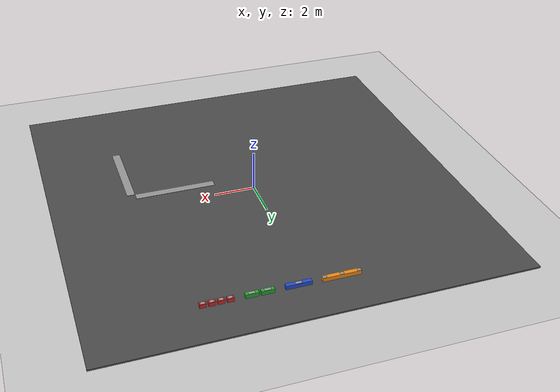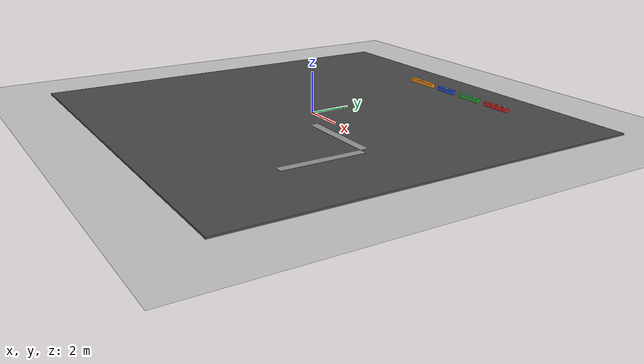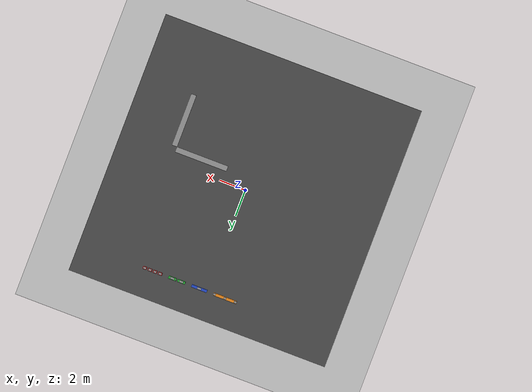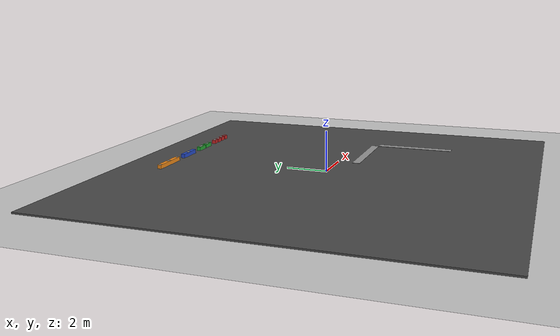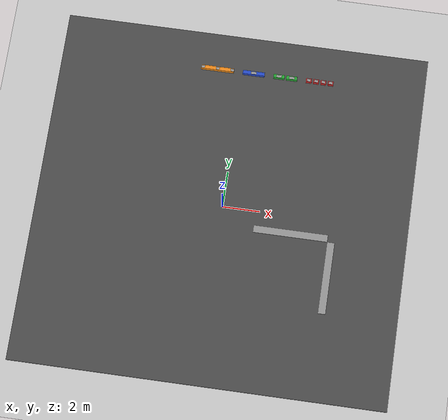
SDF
<sdf version="1.6">
 <world name="default">
  <model name="ground_plane">
   <static>1</static>
   <link name="link">
    <collision name="collision">
     <geometry><plane><normal>0 0 1</normal><size>100 100</size></plane></geometry>
     <surface>
      <contact><collide_bitmask>65535</collide_bitmask></contact>
      <friction><ode><mu>100</mu><mu2>50</mu2></ode></friction>
     </surface>
    </collision>
    <visual name="visual">
     <cast_shadows>0</cast_shadows>
     <geometry><plane><normal>0 0 1</normal><size>100 100</size></plane></geometry>
     <material>
      <script><uri>file://media/materials/scripts/gazebo.material</uri><name>Gazebo/Grey</name></script>
     </material>
    </visual>
   </link>
  </model>
  <model name="brick_red">
   <link name="base_link">
    <inertial>
     <mass>0.01</mass>
     <inertia><ixx>0.001</ixx><ixy>0</ixy><ixz>0</ixz><iyy>0.01</iyy><iyz>0</iyz><izz>0.01</izz></inertia>
    </inertial>
    <collision name="base_link_collision"><geometry><box><size>0.3 0.2 0.2</size></box></geometry></collision>
    <collision name="base_link_fixed_joint_lump__magnet_patch_collision_1">
     <pose>0 0 0.1 0 -0 0</pose>
     <geometry><box><size>0.1 0.025 0.0005</size></box></geometry>
    </collision>
    <visual name="base_link_visual">
     <geometry><box><size>0.3 0.2 0.2</size></box></geometry>
     <material>
      <script><name>Gazebo/Red</name><uri>file://media/materials/scripts/gazebo.material</uri></script>
     </material>
    </visual>
    <visual name="base_link_fixed_joint_lump__magnet_patch_visual_1">
     <pose>0 0 0.1 0 -0 0</pose>
     <geometry><box><size>0.2 0.15 0.001</size></box></geometry>
     <material>
      <script><name>Gazebo/Gray</name><uri>file://media/materials/scripts/gazebo.material</uri></script>
     </material>
    </visual>
   </link>
   <static>0</static>
   <plugin name="dipole_magnet" filename="libstorm_gazebo_dipole_magnet.so">
    <dipole_moment>0 0 1</dipole_moment>
    <shouldPublish>1</shouldPublish>
    <topicNs>magnet</topicNs>
    <updateRate>100</updateRate>
    <gain>1.0</gain>
    <bodyName>base_link</bodyName>
    <xyzOffset>0 0 -0.1</xyzOffset>
    <rpyOffset>0 -0 0</rpyOffset>
   </plugin>
   <pose>4.85011 7.89986 0.15 0 -0 0.004169</pose>
  </model>
  <model name="brick_red_0">
   <link name="base_link">
    <inertial>
     <mass>0.01</mass>
     <inertia><ixx>0.001</ixx><ixy>0</ixy><ixz>0</ixz><iyy>0.01</iyy><iyz>0</iyz><izz>0.01</izz></inertia>
    </inertial>
    <collision name="base_link_collision"><geometry><box><size>0.3 0.2 0.2</size></box></geometry></collision>
    <collision name="base_link_fixed_joint_lump__magnet_patch_collision_1">
     <pose>0 0 0.1 0 -0 0</pose>
     <geometry><box><size>0.1 0.025 0.0005</size></box></geometry>
    </collision>
    <visual name="base_link_visual">
     <geometry><box><size>0.3 0.2 0.2</size></box></geometry>
     <material>
      <script><name>Gazebo/Red</name><uri>file://media/materials/scripts/gazebo.material</uri></script>
     </material>
    </visual>
    <visual name="base_link_fixed_joint_lump__magnet_patch_visual_1">
     <pose>0 0 0.1 0 -0 0</pose>
     <geometry><box><size>0.2 0.15 0.001</size></box></geometry>
     <material>
      <script><name>Gazebo/Gray</name><uri>file://media/materials/scripts/gazebo.material</uri></script>
     </material>
    </visual>
   </link>
   <static>0</static>
   <plugin name="dipole_magnet" filename="libstorm_gazebo_dipole_magnet.so">
    <dipole_moment>0 0 1</dipole_moment>
    <shouldPublish>1</shouldPublish>
    <topicNs>magnet</topicNs>
    <updateRate>100</updateRate>
    <gain>1.0</gain>
    <bodyName>base_link</bodyName>
    <xyzOffset>0 0 -0.1</xyzOffset>
    <rpyOffset>0 -0 0</rpyOffset>
   </plugin>
   <pose>4.45001 7.89985 0.15 -0 -0 -0.00054</pose>
  </model>
  <model name="brick_red_1">
   <link name="base_link">
    <inertial>
     <mass>0.01</mass>
     <inertia><ixx>0.001</ixx><ixy>0</ixy><ixz>0</ixz><iyy>0.01</iyy><iyz>0</iyz><izz>0.01</izz></inertia>
    </inertial>
    <collision name="base_link_collision"><geometry><box><size>0.3 0.2 0.2</size></box></geometry></collision>
    <collision name="base_link_fixed_joint_lump__magnet_patch_collision_1">
     <pose>0 0 0.1 0 -0 0</pose>
     <geometry><box><size>0.1 0.025 0.0005</size></box></geometry>
    </collision>
    <visual name="base_link_visual">
     <geometry><box><size>0.3 0.2 0.2</size></box></geometry>
     <material>
      <script><name>Gazebo/Red</name><uri>file://media/materials/scripts/gazebo.material</uri></script>
     </material>
    </visual>
    <visual name="base_link_fixed_joint_lump__magnet_patch_visual_1">
     <pose>0 0 0.1 0 -0 0</pose>
     <geometry><box><size>0.2 0.15 0.001</size></box></geometry>
     <material>
      <script><name>Gazebo/Gray</name><uri>file://media/materials/scripts/gazebo.material</uri></script>
     </material>
    </visual>
   </link>
   <static>0</static>
   <plugin name="dipole_magnet" filename="libstorm_gazebo_dipole_magnet.so">
    <dipole_moment>0 0 1</dipole_moment>
    <shouldPublish>1</shouldPublish>
    <topicNs>magnet</topicNs>
    <updateRate>100</updateRate>
    <gain>1.0</gain>
    <bodyName>base_link</bodyName>
    <xyzOffset>0 0 -0.1</xyzOffset>
    <rpyOffset>0 -0 0</rpyOffset>
   </plugin>
   <pose>4.04999 7.89985 0.15 -0 -0 -0.00264</pose>
  </model>
  <model name="brick_red_2">
   <link name="base_link">
    <inertial>
     <mass>0.01</mass>
     <inertia><ixx>0.001</ixx><ixy>0</ixy><ixz>0</ixz><iyy>0.01</iyy><iyz>0</iyz><izz>0.01</izz></inertia>
    </inertial>
    <collision name="base_link_collision"><geometry><box><size>0.3 0.2 0.2</size></box></geometry></collision>
    <collision name="base_link_fixed_joint_lump__magnet_patch_collision_1">
     <pose>0 0 0.1 0 -0 0</pose>
     <geometry><box><size>0.1 0.025 0.0005</size></box></geometry>
    </collision>
    <visual name="base_link_visual">
     <geometry><box><size>0.3 0.2 0.2</size></box></geometry>
     <material>
      <script><name>Gazebo/Red</name><uri>file://media/materials/scripts/gazebo.material</uri></script>
     </material>
    </visual>
    <visual name="base_link_fixed_joint_lump__magnet_patch_visual_1">
     <pose>0 0 0.1 0 -0 0</pose>
     <geometry><box><size>0.2 0.15 0.001</size></box></geometry>
     <material>
      <script><name>Gazebo/Gray</name><uri>file://media/materials/scripts/gazebo.material</uri></script>
     </material>
    </visual>
   </link>
   <static>0</static>
   <plugin name="dipole_magnet" filename="libstorm_gazebo_dipole_magnet.so">
    <dipole_moment>0 0 1</dipole_moment>
    <shouldPublish>1</shouldPublish>
    <topicNs>magnet</topicNs>
    <updateRate>100</updateRate>
    <gain>1.0</gain>
    <bodyName>base_link</bodyName>
    <xyzOffset>0 0 -0.1</xyzOffset>
    <rpyOffset>0 -0 0</rpyOffset>
   </plugin>
   <pose>3.64989 7.89977 0.15 0 -0 0.004068</pose>
  </model>
  <model name="brick_green">
   <link name="base_link">
    <inertial>
     <mass>0.01</mass>
     <inertia><ixx>0.001</ixx><ixy>0</ixy><ixz>0</ixz><iyy>0.01</iyy><iyz>0</iyz><izz>0.01</izz></inertia>
    </inertial>
    <collision name="base_link_collision"><geometry><box><size>0.6 0.2 0.2</size></box></geometry></collision>
    <collision name="base_link_fixed_joint_lump__magnet_patch_collision_1">
     <pose>0 0 0.1 0 -0 0</pose>
     <geometry><box><size>0.1 0.025 0.0005</size></box></geometry>
    </collision>
    <visual name="base_link_visual">
     <geometry><box><size>0.6 0.2 0.2</size></box></geometry>
     <material>
      <script><name>Gazebo/Green</name><uri>file://media/materials/scripts/gazebo.material</uri></script>
     </material>
    </visual>
    <visual name="base_link_fixed_joint_lump__magnet_patch_visual_1">
     <pose>0 0 0.1 0 -0 0</pose>
     <geometry><box><size>0.3 0.15 0.001</size></box></geometry>
     <material>
      <script><name>Gazebo/Gray</name><uri>file://media/materials/scripts/gazebo.material</uri></script>
     </material>
    </visual>
   </link>
   <static>0</static>
   <plugin name="dipole_magnet" filename="libstorm_gazebo_dipole_magnet.so">
    <dipole_moment>0 0 1</dipole_moment>
    <shouldPublish>1</shouldPublish>
    <topicNs>magnet</topicNs>
    <updateRate>100</updateRate>
    <gain>1.0</gain>
    <bodyName>base_link</bodyName>
    <xyzOffset>0 0 -0.1</xyzOffset>
    <rpyOffset>0 -0 0</rpyOffset>
   </plugin>
   <pose>2.70011 7.89933 0.15 0 0 -0.000957</pose>
  </model>
  <model name="brick_green_0">
   <link name="base_link">
    <inertial>
     <mass>0.01</mass>
     <inertia><ixx>0.001</ixx><ixy>0</ixy><ixz>0</ixz><iyy>0.01</iyy><iyz>0</iyz><izz>0.01</izz></inertia>
    </inertial>
    <collision name="base_link_collision"><geometry><box><size>0.6 0.2 0.2</size></box></geometry></collision>
    <collision name="base_link_fixed_joint_lump__magnet_patch_collision_1">
     <pose>0 0 0.1 0 -0 0</pose>
     <geometry><box><size>0.1 0.025 0.0005</size></box></geometry>
    </collision>
    <visual name="base_link_visual">
     <geometry><box><size>0.6 0.2 0.2</size></box></geometry>
     <material>
      <script><name>Gazebo/Green</name><uri>file://media/materials/scripts/gazebo.material</uri></script>
     </material>
    </visual>
    <visual name="base_link_fixed_joint_lump__magnet_patch_visual_1">
     <pose>0 0 0.1 0 -0 0</pose>
     <geometry><box><size>0.3 0.15 0.001</size></box></geometry>
     <material>
      <script><name>Gazebo/Gray</name><uri>file://media/materials/scripts/gazebo.material</uri></script>
     </material>
    </visual>
   </link>
   <static>0</static>
   <plugin name="dipole_magnet" filename="libstorm_gazebo_dipole_magnet.so">
    <dipole_moment>0 0 1</dipole_moment>
    <shouldPublish>1</shouldPublish>
    <topicNs>magnet</topicNs>
    <updateRate>100</updateRate>
    <gain>1.0</gain>
    <bodyName>base_link</bodyName>
    <xyzOffset>0 0 -0.1</xyzOffset>
    <rpyOffset>0 -0 0</rpyOffset>
   </plugin>
   <pose>1.99996 7.89901 0.15 0 -0 0.001117</pose>
  </model>
  <model name="brick_blue_0">
   <link name="base_link">
    <inertial>
     <mass>0.01</mass>
     <inertia><ixx>0.001</ixx><ixy>0</ixy><ixz>0</ixz><iyy>0.01</iyy><iyz>0</iyz><izz>0.01</izz></inertia>
    </inertial>
    <collision name="base_link_collision"><geometry><box><size>1.2 0.2 0.2</size></box></geometry></collision>
    <collision name="base_link_fixed_joint_lump__magnet_patch_collision_1">
     <pose>0 0 0.1 0 -0 0</pose>
     <geometry><box><size>0.1 0.025 0.0005</size></box></geometry>
    </collision>
    <visual name="base_link_visual">
     <geometry><box><size>1.2 0.2 0.2</size></box></geometry>
     <material>
      <script><name>Gazebo/Blue</name><uri>file://media/materials/scripts/gazebo.material</uri></script>
     </material>
    </visual>
    <visual name="base_link_fixed_joint_lump__magnet_patch_visual_1">
     <pose>0 0 0.1 0 -0 0</pose>
     <geometry><box><size>0.3 0.15 0.001</size></box></geometry>
     <material>
      <script><name>Gazebo/Gray</name><uri>file://media/materials/scripts/gazebo.material</uri></script>
     </material>
    </visual>
   </link>
   <static>0</static>
   <plugin name="dipole_magnet" filename="libstorm_gazebo_dipole_magnet.so">
    <dipole_moment>0 0 1</dipole_moment>
    <shouldPublish>1</shouldPublish>
    <topicNs>magnet</topicNs>
    <updateRate>100</updateRate>
    <gain>1.0</gain>
    <bodyName>base_link</bodyName>
    <xyzOffset>0 0 -0.1</xyzOffset>
    <rpyOffset>0 -0 0</rpyOffset>
   </plugin>
   <pose>0.60001 7.89799 0.15 -0 -0 -2e-06</pose>
  </model>
  <model name="brick_orange_0">
   <link name="base_link">
    <inertial>
     <mass>0.01</mass>
     <inertia><ixx>0.001</ixx><ixy>0</ixy><ixz>0</ixz><iyy>0.01</iyy><iyz>0</iyz><izz>0.01</izz></inertia>
    </inertial>
    <collision name="base_link_collision"><geometry><box><size>1.8 0.2 0.2</size></box></geometry></collision>
    <collision name="base_link_fixed_joint_lump__magnet_patch_collision_0">
     <pose>-0.805 0 0.1 0 -0 0</pose>
     <geometry><box><size>0.2 0.15 0.0005</size></box></geometry>
    </collision>
    <collision name="base_link_fixed_joint_lump__magnet_patch_collision_1">
     <pose>0 0 0.1 0 -0 0</pose>
     <geometry><box><size>0.15 0.15 0.0005</size></box></geometry>
    </collision>
    <collision name="base_link_fixed_joint_lump__magnet_patch_collision_2">
     <pose>0.805 0 0.1 0 -0 0</pose>
     <geometry><box><size>0.15 0.15 0.0005</size></box></geometry>
    </collision>
    <visual name="base_link_visual">
     <geometry><box><size>1.8 0.2 0.2</size></box></geometry>
     <material>
      <script><name>Gazebo/Orange</name><uri>file://media/materials/scripts/gazebo.material</uri></script>
     </material>
    </visual>
    <visual name="base_link_fixed_joint_lump__magnet_patch_visual_0">
     <pose>-0.805 0 0.1 0 -0 0</pose>
     <geometry><box><size>0.19 0.15 0.001</size></box></geometry>
     <material>
      <script><name>Gazebo/Gray</name><uri>file://media/materials/scripts/gazebo.material</uri></script>
     </material>
    </visual>
    <visual name="base_link_fixed_joint_lump__magnet_patch_visual_1">
     <pose>0 0 0.1 0 -0 0</pose>
     <geometry><box><size>0.19 0.15 0.001</size></box></geometry>
     <material>
      <script><name>Gazebo/Gray</name><uri>file://media/materials/scripts/gazebo.material</uri></script>
     </material>
    </visual>
    <visual name="base_link_fixed_joint_lump__magnet_patch_visual_2">
     <pose>0.805 0 0.1 0 -0 0</pose>
     <geometry><box><size>0.19 0.15 0.001</size></box></geometry>
     <material>
      <script><name>Gazebo/Gray</name><uri>file://media/materials/scripts/gazebo.material</uri></script>
     </material>
    </visual>
   </link>
   <static>0</static>
   <plugin name="dipole_magnet" filename="libstorm_gazebo_dipole_magnet.so">
    <dipole_moment>0 0 1</dipole_moment>
    <shouldPublish>1</shouldPublish>
    <topicNs>magnet</topicNs>
    <updateRate>100</updateRate>
    <gain>1.0</gain>
    <bodyName>base_link</bodyName>
    <xyzOffset>0 0 -0.1</xyzOffset>
    <rpyOffset>0 -0 0</rpyOffset>
   </plugin>
   <plugin name="dipole_magnet" filename="libstorm_gazebo_dipole_magnet.so">
    <dipole_moment>0 0 1</dipole_moment>
    <shouldPublish>1</shouldPublish>
    <topicNs>magnet</topicNs>
    <updateRate>100</updateRate>
    <gain>1.0</gain>
    <bodyName>base_link</bodyName>
    <xyzOffset>-0.805 0 -0.1</xyzOffset>
    <rpyOffset>0 -0 0</rpyOffset>
   </plugin>
   <plugin name="dipole_magnet" filename="libstorm_gazebo_dipole_magnet.so">
    <dipole_moment>0 0 1</dipole_moment>
    <shouldPublish>1</shouldPublish>
    <topicNs>magnet</topicNs>
    <updateRate>100</updateRate>
    <gain>1.0</gain>
    <bodyName>base_link</bodyName>
    <xyzOffset>0.805 0 -0.1</xyzOffset>
    <rpyOffset>0 -0 0</rpyOffset>
   </plugin>
   <pose>-1.4 7.89846 0.15 0 -0 0</pose>
  </model>
  <model name="asphalt_plane">
   <static>1</static>
   <link name="link">
    <collision name="collision"><geometry><box><size>20 20 0.1</size></box></geometry></collision>
    <visual name="visual">
     <cast_shadows>0</cast_shadows>
     <geometry><box><size>20 20 0.1</size></box></geometry>
     <material>
      <script>
       <uri>model://asphalt_plane/materials/scripts</uri>
       <uri>model://asphalt_plane/materials/textures</uri>
       <name>vrc/asphalt</name>
      </script>
     </material>
    </visual>
   </link>
   <pose>0.00701 0.016741 0 0 -0 0</pose>
  </model>
  <model name="L-wall">
   <pose>4 -3 0.051046 0 -0 0</pose>
   <link name="Wall_2">
    <collision name="Wall_2_Collision">
     <geometry><box><size>4 0.4 0.01</size></box></geometry>
     <pose>0 0 0.005 0 -0 0</pose>
    </collision>
    <visual name="Wall_2_Visual">
     <pose>0 0 0.005 0 -0 0</pose>
     <geometry><box><size>4 0.4 0.01</size></box></geometry>
     <material>
      <script><uri>file://media/materials/scripts/gazebo.material</uri><name>Gazebo/Grey</name></script>
      <ambient>1 1 1 1</ambient>
     </material>
     <meta><layer>0</layer></meta>
    </visual>
    <pose>-0.2 2 0 0 -0 0</pose>
   </link>
   <link name="Wall_7">
    <collision name="Wall_7_Collision">
     <geometry><box><size>4 0.4 0.01</size></box></geometry>
     <pose>0 0 0.005 0 -0 0</pose>
    </collision>
    <visual name="Wall_7_Visual">
     <pose>0 0 0.005 0 -0 0</pose>
     <geometry><box><size>4 0.4 0.01</size></box></geometry>
     <material>
      <script><uri>file://media/materials/scripts/gazebo.material</uri><name>Gazebo/Grey</name></script>
      <ambient>1 1 1 1</ambient>
     </material>
     <meta><layer>0</layer></meta>
    </visual>
    <pose>2 -0.2 0 0 -0 -1.5708</pose>
   </link>
   <static>1</static>
  </model>
 </world>
</sdf>
